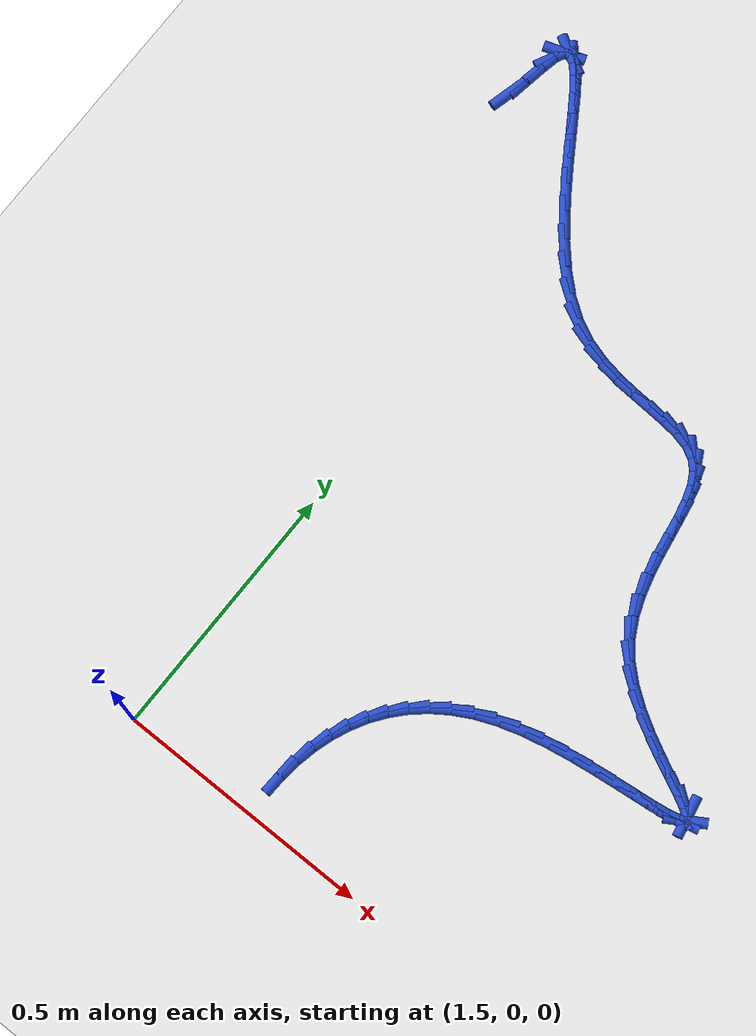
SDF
<sdf version="1.6">
 <world name="default">
  <model name="ground_plane">
   <static>1</static>
   <link name="link">
    <collision name="collision">
     <geometry><plane><normal>0 0 1</normal><size>100 100</size></plane></geometry>
     <surface><friction><ode><mu>100</mu><mu2>50</mu2></ode></friction></surface>
    </collision>
    <visual name="visual">
     <cast_shadows>0</cast_shadows>
     <geometry><plane><normal>0 0 1</normal><size>100 100</size></plane></geometry>
     <material>
      <script><uri>file://media/materials/scripts/gazebo.material</uri><name>Gazebo/WhiteGlow</name></script>
     </material>
    </visual>
   </link>
  </model>
  <model name="line">
   <link name="link_72">
    <pose>1.3014098006461987 1.3032329288068003 0.01 0 1.57 1.3195860041165246</pose>
    <collision name="collision">
     <geometry><cylinder><radius>0.01</radius><length>0.08</length></cylinder></geometry>
    </collision>
    <visual name="visual">
     <material>
      <script><name>Gazebo/Blue</name><uri>file://media/materials/scripts/gazebo.material</uri></script>
     </material>
     <geometry><cylinder><radius>0.01</radius><length>0.08</length></cylinder></geometry>
    </visual>
   </link>
   <link name="link_73">
    <pose>1.3109897678020552 1.3405625827405399 0.01 0 1.57 1.4042285050539571</pose>
    <collision name="collision">
     <geometry><cylinder><radius>0.01</radius><length>0.08</length></cylinder></geometry>
    </collision>
    <visual name="visual">
     <material>
      <script><name>Gazebo/Blue</name><uri>file://media/materials/scripts/gazebo.material</uri></script>
     </material>
     <geometry><cylinder><radius>0.01</radius><length>0.08</length></cylinder></geometry>
    </visual>
   </link>
   <link name="link_74">
    <pose>1.3172772787663003 1.3779602889651004 0.01 0 1.57 1.3706171806686047</pose>
    <collision name="collision">
     <geometry><cylinder><radius>0.01</radius><length>0.08</length></cylinder></geometry>
    </collision>
    <visual name="visual">
     <material>
      <script><name>Gazebo/Blue</name><uri>file://media/materials/scripts/gazebo.material</uri></script>
     </material>
     <geometry><cylinder><radius>0.01</radius><length>0.08</length></cylinder></geometry>
    </visual>
   </link>
   <link name="link_75">
    <pose>1.3233823610823776 1.4080499199768746 0.01 0 1.57 1.1054465272666518</pose>
    <collision name="collision">
     <geometry><cylinder><radius>0.01</radius><length>0.08</length></cylinder></geometry>
    </collision>
    <visual name="visual">
     <material>
      <script><name>Gazebo/Blue</name><uri>file://media/materials/scripts/gazebo.material</uri></script>
     </material>
     <geometry><cylinder><radius>0.01</radius><length>0.08</length></cylinder></geometry>
    </visual>
   </link>
   <link name="link_76">
    <pose>1.331876730161807 1.424966608178737 0.01 0 1.57 0.33051205854369414</pose>
    <collision name="collision">
     <geometry><cylinder><radius>0.01</radius><length>0.08</length></cylinder></geometry>
    </collision>
    <visual name="visual">
     <material>
      <script><name>Gazebo/Blue</name><uri>file://media/materials/scripts/gazebo.material</uri></script>
     </material>
     <geometry><cylinder><radius>0.01</radius><length>0.08</length></cylinder></geometry>
    </visual>
   </link>
   <link name="link_77">
    <pose>1.3431935146351943 1.4288493641454747 0.01 0 1.57 -0.4917693095500789</pose>
    <collision name="collision">
     <geometry><cylinder><radius>0.01</radius><length>0.08</length></cylinder></geometry>
    </collision>
    <visual name="visual">
     <material>
      <script><name>Gazebo/Blue</name><uri>file://media/materials/scripts/gazebo.material</uri></script>
     </material>
     <geometry><cylinder><radius>0.01</radius><length>0.08</length></cylinder></geometry>
    </visual>
   </link>
   <link name="link_78">
    <pose>1.3572348369504987 1.4213279476034106 0.01 0 1.57 -0.8038818135464397</pose>
    <collision name="collision">
     <geometry><cylinder><radius>0.01</radius><length>0.08</length></cylinder></geometry>
    </collision>
    <visual name="visual">
     <material>
      <script><name>Gazebo/Blue</name><uri>file://media/materials/scripts/gazebo.material</uri></script>
     </material>
     <geometry><cylinder><radius>0.01</radius><length>0.08</length></cylinder></geometry>
    </visual>
   </link>
   <link name="link_79">
    <pose>1.37390281955568 1.4040321182788673 0.01 0 1.57 -0.9243733077283942</pose>
    <collision name="collision">
     <geometry><cylinder><radius>0.01</radius><length>0.08</length></cylinder></geometry>
    </collision>
    <visual name="visual">
     <material>
      <script><name>Gazebo/Blue</name><uri>file://media/materials/scripts/gazebo.material</uri></script>
     </material>
     <geometry><cylinder><radius>0.01</radius><length>0.08</length></cylinder></geometry>
    </visual>
   </link>
   <link name="link_80">
    <pose>1.393099584898697 1.3785916358981682 0.01 0 1.57 -0.9758052666844227</pose>
    <collision name="collision">
     <geometry><cylinder><radius>0.01</radius><length>0.08</length></cylinder></geometry>
    </collision>
    <visual name="visual">
     <material>
      <script><name>Gazebo/Blue</name><uri>file://media/materials/scripts/gazebo.material</uri></script>
     </material>
     <geometry><cylinder><radius>0.01</radius><length>0.08</length></cylinder></geometry>
    </visual>
   </link>
   <link name="link_81">
    <pose>1.4147272554275112 1.3466362601876354 0.01 0 1.57 -0.9941470030234926</pose>
    <collision name="collision">
     <geometry><cylinder><radius>0.01</radius><length>0.08</length></cylinder></geometry>
    </collision>
    <visual name="visual">
     <material>
      <script><name>Gazebo/Blue</name><uri>file://media/materials/scripts/gazebo.material</uri></script>
     </material>
     <geometry><cylinder><radius>0.01</radius><length>0.08</length></cylinder></geometry>
    </visual>
   </link>
   <link name="link_82">
    <pose>1.4386879535900812 1.3097957508735925 0.01 0 1.57 -0.9920836327617922</pose>
    <collision name="collision">
     <geometry><cylinder><radius>0.01</radius><length>0.08</length></cylinder></geometry>
    </collision>
    <visual name="visual">
     <material>
      <script><name>Gazebo/Blue</name><uri>file://media/materials/scripts/gazebo.material</uri></script>
     </material>
     <geometry><cylinder><radius>0.01</radius><length>0.08</length></cylinder></geometry>
    </visual>
   </link>
   <link name="link_83">
    <pose>1.464883801834367 1.2696998676823619 0.01 0 1.57 -0.9742345011605615</pose>
    <collision name="collision">
     <geometry><cylinder><radius>0.01</radius><length>0.08</length></cylinder></geometry>
    </collision>
    <visual name="visual">
     <material>
      <script><name>Gazebo/Blue</name><uri>file://media/materials/scripts/gazebo.material</uri></script>
     </material>
     <geometry><cylinder><radius>0.01</radius><length>0.08</length></cylinder></geometry>
    </visual>
   </link>
   <link name="link_84">
    <pose>1.4932169226083278 1.2279783703402665 0.01 0 1.57 -0.9414887511175895</pose>
    <collision name="collision">
     <geometry><cylinder><radius>0.01</radius><length>0.08</length></cylinder></geometry>
    </collision>
    <visual name="visual">
     <material>
      <script><name>Gazebo/Blue</name><uri>file://media/materials/scripts/gazebo.material</uri></script>
     </material>
     <geometry><cylinder><radius>0.01</radius><length>0.08</length></cylinder></geometry>
    </visual>
   </link>
   <link name="link_85">
    <pose>1.5235894383599242 1.1862610185736293 0.01 0 1.57 -0.8923050839368349</pose>
    <collision name="collision">
     <geometry><cylinder><radius>0.01</radius><length>0.08</length></cylinder></geometry>
    </collision>
    <visual name="visual">
     <material>
      <script><name>Gazebo/Blue</name><uri>file://media/materials/scripts/gazebo.material</uri></script>
     </material>
     <geometry><cylinder><radius>0.01</radius><length>0.08</length></cylinder></geometry>
    </visual>
   </link>
   <link name="link_86">
    <pose>1.555903471537115 1.1461775721087735 0.01 0 1.57 -0.8228869852898636</pose>
    <collision name="collision">
     <geometry><cylinder><radius>0.01</radius><length>0.08</length></cylinder></geometry>
    </collision>
    <visual name="visual">
     <material>
      <script><name>Gazebo/Blue</name><uri>file://media/materials/scripts/gazebo.material</uri></script>
     </material>
     <geometry><cylinder><radius>0.01</radius><length>0.08</length></cylinder></geometry>
    </visual>
   </link>
   <link name="link_87">
    <pose>1.5900611445878607 1.109357790672022 0.01 0 1.57 -0.7268320022876468</pose>
    <collision name="collision">
     <geometry><cylinder><radius>0.01</radius><length>0.08</length></cylinder></geometry>
    </collision>
    <visual name="visual">
     <material>
      <script><name>Gazebo/Blue</name><uri>file://media/materials/scripts/gazebo.material</uri></script>
     </material>
     <geometry><cylinder><radius>0.01</radius><length>0.08</length></cylinder></geometry>
    </visual>
   </link>
   <link name="link_88">
    <pose>1.6259645799601203 1.0774314339896969 0.01 0 1.57 -0.594774194716281</pose>
    <collision name="collision">
     <geometry><cylinder><radius>0.01</radius><length>0.08</length></cylinder></geometry>
    </collision>
    <visual name="visual">
     <material>
      <script><name>Gazebo/Blue</name><uri>file://media/materials/scripts/gazebo.material</uri></script>
     </material>
     <geometry><cylinder><radius>0.01</radius><length>0.08</length></cylinder></geometry>
    </visual>
   </link>
   <link name="link_89">
    <pose>1.6635158984413165 1.0520282538859784 0.01 0 1.57 -0.429036087998746</pose>
    <collision name="collision">
     <geometry><cylinder><radius>0.01</radius><length>0.08</length></cylinder></geometry>
    </collision>
    <visual name="visual">
     <material>
      <script><name>Gazebo/Blue</name><uri>file://media/materials/scripts/gazebo.material</uri></script>
     </material>
     <geometry><cylinder><radius>0.01</radius><length>0.08</length></cylinder></geometry>
    </visual>
   </link>
   <link name="link_90">
    <pose>1.7024951330658948 1.0341970126362243 0.01 0 1.57 -0.2787146421624556</pose>
    <collision name="collision">
     <geometry><cylinder><radius>0.01</radius><length>0.08</length></cylinder></geometry>
    </collision>
    <visual name="visual">
     <material>
      <script><name>Gazebo/Blue</name><uri>file://media/materials/scripts/gazebo.material</uri></script>
     </material>
     <geometry><cylinder><radius>0.01</radius><length>0.08</length></cylinder></geometry>
    </visual>
   </link>
   <link name="link_91">
    <pose>1.7422284861918915 1.0228267892265235 0.01 0 1.57 -0.1627906314078422</pose>
    <collision name="collision">
     <geometry><cylinder><radius>0.01</radius><length>0.08</length></cylinder></geometry>
    </collision>
    <visual name="visual">
     <material>
      <script><name>Gazebo/Blue</name><uri>file://media/materials/scripts/gazebo.material</uri></script>
     </material>
     <geometry><cylinder><radius>0.01</radius><length>0.08</length></cylinder></geometry>
    </visual>
   </link>
   <link name="link_92">
    <pose>1.7819367305749387 1.0163049456759408 0.01 0 1.57 -0.084267107856878</pose>
    <collision name="collision">
     <geometry><cylinder><radius>0.01</radius><length>0.08</length></cylinder></geometry>
    </collision>
    <visual name="visual">
     <material>
      <script><name>Gazebo/Blue</name><uri>file://media/materials/scripts/gazebo.material</uri></script>
     </material>
     <geometry><cylinder><radius>0.01</radius><length>0.08</length></cylinder></geometry>
    </visual>
   </link>
   <link name="link_93">
    <pose>1.820840638970668 1.0130188440035428 0.01 0 1.57 -0.04453062783376061</pose>
    <collision name="collision">
     <geometry><cylinder><radius>0.01</radius><length>0.08</length></cylinder></geometry>
    </collision>
    <visual name="visual">
     <material>
      <script><name>Gazebo/Blue</name><uri>file://media/materials/scripts/gazebo.material</uri></script>
     </material>
     <geometry><cylinder><radius>0.01</radius><length>0.08</length></cylinder></geometry>
    </visual>
   </link>
   <link name="link_94">
    <pose>1.8581609841347102 1.0113558462283943 0.01 0 1.57 -0.047237358422324925</pose>
    <collision name="collision">
     <geometry><cylinder><radius>0.01</radius><length>0.08</length></cylinder></geometry>
    </collision>
    <visual name="visual">
     <material>
      <script><name>Gazebo/Blue</name><uri>file://media/materials/scripts/gazebo.material</uri></script>
     </material>
     <geometry><cylinder><radius>0.01</radius><length>0.08</length></cylinder></geometry>
    </visual>
   </link>
   <link name="link_95">
    <pose>1.8931185388226965 1.0097033143695608 0.01 0 1.57 -0.10194456436838788</pose>
    <collision name="collision">
     <geometry><cylinder><radius>0.01</radius><length>0.08</length></cylinder></geometry>
    </collision>
    <visual name="visual">
     <material>
      <script><name>Gazebo/Blue</name><uri>file://media/materials/scripts/gazebo.material</uri></script>
     </material>
     <geometry><cylinder><radius>0.01</radius><length>0.08</length></cylinder></geometry>
    </visual>
   </link>
   <link name="link_96">
    <pose>1.924934075790258 1.0064486104461077 0.01 0 1.57 -0.2279003339068853</pose>
    <collision name="collision">
     <geometry><cylinder><radius>0.01</radius><length>0.08</length></cylinder></geometry>
    </collision>
    <visual name="visual">
     <material>
      <script><name>Gazebo/Blue</name><uri>file://media/materials/scripts/gazebo.material</uri></script>
     </material>
     <geometry><cylinder><radius>0.01</radius><length>0.08</length></cylinder></geometry>
    </visual>
   </link>
   <link name="link_97">
    <pose>1.9528283677930265 0.9999790964771005 0.01 0 1.57 -0.45324840087504636</pose>
    <collision name="collision">
     <geometry><cylinder><radius>0.01</radius><length>0.08</length></cylinder></geometry>
    </collision>
    <visual name="visual">
     <material>
      <script><name>Gazebo/Blue</name><uri>file://media/materials/scripts/gazebo.material</uri></script>
     </material>
     <geometry><cylinder><radius>0.01</radius><length>0.08</length></cylinder></geometry>
    </visual>
   </link>
   <link name="link_98">
    <pose>1.9760221875866337 0.9886821344816048 0.01 0 1.57 -0.7754710051669375</pose>
    <collision name="collision">
     <geometry><cylinder><radius>0.01</radius><length>0.08</length></cylinder></geometry>
    </collision>
    <visual name="visual">
     <material>
      <script><name>Gazebo/Blue</name><uri>file://media/materials/scripts/gazebo.material</uri></script>
     </material>
     <geometry><cylinder><radius>0.01</radius><length>0.08</length></cylinder></geometry>
    </visual>
   </link>
   <link name="link_99">
    <pose>1.9938988651847602 0.9711569087248333 0.01 0 1.57 -1.059490042577062</pose>
    <collision name="collision">
     <geometry><cylinder><radius>0.01</radius><length>0.08</length></cylinder></geometry>
    </collision>
    <visual name="visual">
     <material>
      <script><name>Gazebo/Blue</name><uri>file://media/materials/scripts/gazebo.material</uri></script>
     </material>
     <geometry><cylinder><radius>0.01</radius><length>0.08</length></cylinder></geometry>
    </visual>
   </link>
   <link name="link_100">
    <pose>2.0070955957377454 0.9476364679502648 0.01 0 1.57 -1.2418181087611244</pose>
    <collision name="collision">
     <geometry><cylinder><radius>0.01</radius><length>0.08</length></cylinder></geometry>
    </collision>
    <visual name="visual">
     <material>
      <script><name>Gazebo/Blue</name><uri>file://media/materials/scripts/gazebo.material</uri></script>
     </material>
     <geometry><cylinder><radius>0.01</radius><length>0.08</length></cylinder></geometry>
    </visual>
   </link>
   <link name="link_101">
    <pose>2.01683276763087 0.91911379806103 0.01 0 1.57 -1.3441478718558495</pose>
    <collision name="collision">
     <geometry><cylinder><radius>0.01</radius><length>0.08</length></cylinder></geometry>
    </collision>
    <visual name="visual">
     <material>
      <script><name>Gazebo/Blue</name><uri>file://media/materials/scripts/gazebo.material</uri></script>
     </material>
     <geometry><cylinder><radius>0.01</radius><length>0.08</length></cylinder></geometry>
    </visual>
   </link>
   <link name="link_102">
    <pose>2.0243340064611686 0.8865861032490825 0.01 0 1.57 -1.3901821491103359</pose>
    <collision name="collision">
     <geometry><cylinder><radius>0.01</radius><length>0.08</length></cylinder></geometry>
    </collision>
    <visual name="visual">
     <material>
      <script><name>Gazebo/Blue</name><uri>file://media/materials/scripts/gazebo.material</uri></script>
     </material>
     <geometry><cylinder><radius>0.01</radius><length>0.08</length></cylinder></geometry>
    </visual>
   </link>
   <link name="link_103">
    <pose>2.030822937825674 0.8510505877063753 0.01 0 1.57 -1.3942014782196375</pose>
    <collision name="collision">
     <geometry><cylinder><radius>0.01</radius><length>0.08</length></cylinder></geometry>
    </collision>
    <visual name="visual">
     <material>
      <script><name>Gazebo/Blue</name><uri>file://media/materials/scripts/gazebo.material</uri></script>
     </material>
     <geometry><cylinder><radius>0.01</radius><length>0.08</length></cylinder></geometry>
    </visual>
   </link>
   <link name="link_104">
    <pose>2.0375231873214217 0.8135044556248622 0.01 0 1.57 -1.3628681798609181</pose>
    <collision name="collision">
     <geometry><cylinder><radius>0.01</radius><length>0.08</length></cylinder></geometry>
    </collision>
    <visual name="visual">
     <material>
      <script><name>Gazebo/Blue</name><uri>file://media/materials/scripts/gazebo.material</uri></script>
     </material>
     <geometry><cylinder><radius>0.01</radius><length>0.08</length></cylinder></geometry>
    </visual>
   </link>
   <link name="link_105">
    <pose>2.0456583805454454 0.7749449111964974 0.01 0 1.57 -1.2979666749320158</pose>
    <collision name="collision">
     <geometry><cylinder><radius>0.01</radius><length>0.08</length></cylinder></geometry>
    </collision>
    <visual name="visual">
     <material>
      <script><name>Gazebo/Blue</name><uri>file://media/materials/scripts/gazebo.material</uri></script>
     </material>
     <geometry><cylinder><radius>0.01</radius><length>0.08</length></cylinder></geometry>
    </visual>
   </link>
   <link name="link_106">
    <pose>2.056452143094779 0.7363691586132344 0.01 0 1.57 -1.1986170086749084</pose>
    <collision name="collision">
     <geometry><cylinder><radius>0.01</radius><length>0.08</length></cylinder></geometry>
    </collision>
    <visual name="visual">
     <material>
      <script><name>Gazebo/Blue</name><uri>file://media/materials/scripts/gazebo.material</uri></script>
     </material>
     <geometry><cylinder><radius>0.01</radius><length>0.08</length></cylinder></geometry>
    </visual>
   </link>
   <link name="link_107">
    <pose>2.0711281005664564 0.6987744020670266 0.01 0 1.57 -1.0638093465070246</pose>
    <collision name="collision">
     <geometry><cylinder><radius>0.01</radius><length>0.08</length></cylinder></geometry>
    </collision>
    <visual name="visual">
     <material>
      <script><name>Gazebo/Blue</name><uri>file://media/materials/scripts/gazebo.material</uri></script>
     </material>
     <geometry><cylinder><radius>0.01</radius><length>0.08</length></cylinder></geometry>
    </visual>
   </link>
   <link name="link_108">
    <pose>2.0909098785575115 0.663157845749828 0.01 0 1.57 -0.8964215143062476</pose>
    <collision name="collision">
     <geometry><cylinder><radius>0.01</radius><length>0.08</length></cylinder></geometry>
    </collision>
    <visual name="visual">
     <material>
      <script><name>Gazebo/Blue</name><uri>file://media/materials/scripts/gazebo.material</uri></script>
     </material>
     <geometry><cylinder><radius>0.01</radius><length>0.08</length></cylinder></geometry>
    </visual>
   </link>
   <link name="link_109">
    <pose>2.117007047298215 0.6305118890540427 0.01 0 1.57 -0.7313871092628221</pose>
    <collision name="collision">
     <geometry><cylinder><radius>0.01</radius><length>0.08</length></cylinder></geometry>
    </collision>
    <visual name="visual">
     <material>
      <script><name>Gazebo/Blue</name><uri>file://media/materials/scripts/gazebo.material</uri></script>
     </material>
     <geometry><cylinder><radius>0.01</radius><length>0.08</length></cylinder></geometry>
    </visual>
   </link>
   <link name="link_110">
    <pose>2.1494267170686574 0.6014178727975091 0.01 0 1.57 -0.6112872241490892</pose>
    <collision name="collision">
     <geometry><cylinder><radius>0.01</radius><length>0.08</length></cylinder></geometry>
    </collision>
    <visual name="visual">
     <material>
      <script><name>Gazebo/Blue</name><uri>file://media/materials/scripts/gazebo.material</uri></script>
     </material>
     <geometry><cylinder><radius>0.01</radius><length>0.08</length></cylinder></geometry>
    </visual>
   </link>
   <link name="link_111">
    <pose>2.1860697240764684 0.5757371121392155 0.01 0 1.57 -0.5278596065426268</pose>
    <collision name="collision">
     <geometry><cylinder><radius>0.01</radius><length>0.08</length></cylinder></geometry>
    </collision>
    <visual name="visual">
     <material>
      <script><name>Gazebo/Blue</name><uri>file://media/materials/scripts/gazebo.material</uri></script>
     </material>
     <geometry><cylinder><radius>0.01</radius><length>0.08</length></cylinder></geometry>
    </visual>
   </link>
   <link name="link_112">
    <pose>2.224624083075507 0.5532581696417651 0.01 0 1.57 -0.4722427216709994</pose>
    <collision name="collision">
     <geometry><cylinder><radius>0.01</radius><length>0.08</length></cylinder></geometry>
    </collision>
    <visual name="visual">
     <material>
      <script><name>Gazebo/Blue</name><uri>file://media/materials/scripts/gazebo.material</uri></script>
     </material>
     <geometry><cylinder><radius>0.01</radius><length>0.08</length></cylinder></geometry>
    </visual>
   </link>
   <link name="link_113">
    <pose>2.2627778088196333 0.5337696078677623 0.01 0 1.57 -0.4405688445016698</pose>
    <collision name="collision">
     <geometry><cylinder><radius>0.01</radius><length>0.08</length></cylinder></geometry>
    </collision>
    <visual name="visual">
     <material>
      <script><name>Gazebo/Blue</name><uri>file://media/materials/scripts/gazebo.material</uri></script>
     </material>
     <geometry><cylinder><radius>0.01</radius><length>0.08</length></cylinder></geometry>
    </visual>
   </link>
   <link name="link_114">
    <pose>2.2982189160627065 0.5170599893798091 0.01 0 1.57 -0.4352154620678666</pose>
    <collision name="collision">
     <geometry><cylinder><radius>0.01</radius><length>0.08</length></cylinder></geometry>
    </collision>
    <visual name="visual">
     <material>
      <script><name>Gazebo/Blue</name><uri>file://media/materials/scripts/gazebo.material</uri></script>
     </material>
     <geometry><cylinder><radius>0.01</radius><length>0.08</length></cylinder></geometry>
    </visual>
   </link>
   <link name="link_115">
    <pose>2.328635419558586 0.50291787674051 0.01 0 1.57 -0.4721410890539826</pose>
    <collision name="collision">
     <geometry><cylinder><radius>0.01</radius><length>0.08</length></cylinder></geometry>
    </collision>
    <visual name="visual">
     <material>
      <script><name>Gazebo/Blue</name><uri>file://media/materials/scripts/gazebo.material</uri></script>
     </material>
     <geometry><cylinder><radius>0.01</radius><length>0.08</length></cylinder></geometry>
    </visual>
   </link>
   <link name="link_116">
    <pose>2.3517153340611308 0.4911318325124682 0.01 0 1.57 -0.6225921645690136</pose>
    <collision name="collision">
     <geometry><cylinder><radius>0.01</radius><length>0.08</length></cylinder></geometry>
    </collision>
    <visual name="visual">
     <material>
      <script><name>Gazebo/Blue</name><uri>file://media/materials/scripts/gazebo.material</uri></script>
     </material>
     <geometry><cylinder><radius>0.01</radius><length>0.08</length></cylinder></geometry>
    </visual>
   </link>
   <link name="link_117">
    <pose>2.3651466743242007 0.48149041925828723 0.01 0 1.57 -1.3628367425050438</pose>
    <collision name="collision">
     <geometry><cylinder><radius>0.01</radius><length>0.08</length></cylinder></geometry>
    </collision>
    <visual name="visual">
     <material>
      <script><name>Gazebo/Blue</name><uri>file://media/materials/scripts/gazebo.material</uri></script>
     </material>
     <geometry><cylinder><radius>0.01</radius><length>0.08</length></cylinder></geometry>
    </visual>
   </link>
   <link name="link_118">
    <pose>2.3667754546233377 0.47377145659620257 0.01 0 1.57 0.5453846923096642</pose>
    <collision name="collision">
     <geometry><cylinder><radius>0.01</radius><length>0.08</length></cylinder></geometry>
    </collision>
    <visual name="visual">
     <material>
      <script><name>Gazebo/Blue</name><uri>file://media/materials/scripts/gazebo.material</uri></script>
     </material>
     <geometry><cylinder><radius>0.01</radius><length>0.08</length></cylinder></geometry>
    </visual>
   </link>
   <link name="link_119">
    <pose>2.356613566773839 0.4676054984966212 0.01 0 1.57 0.24483642569573316</pose>
    <collision name="collision">
     <geometry><cylinder><radius>0.01</radius><length>0.08</length></cylinder></geometry>
    </collision>
    <visual name="visual">
     <material>
      <script><name>Gazebo/Blue</name><uri>file://media/materials/scripts/gazebo.material</uri></script>
     </material>
     <geometry><cylinder><radius>0.01</radius><length>0.08</length></cylinder></geometry>
    </visual>
   </link>
   <link name="link_120">
    <pose>2.3362442812363513 0.46251625535733654 0.01 0 1.57 0.15386731839109807</pose>
    <collision name="collision">
     <geometry><cylinder><radius>0.01</radius><length>0.08</length></cylinder></geometry>
    </collision>
    <visual name="visual">
     <material>
      <script><name>Gazebo/Blue</name><uri>file://media/materials/scripts/gazebo.material</uri></script>
     </material>
     <geometry><cylinder><radius>0.01</radius><length>0.08</length></cylinder></geometry>
    </visual>
   </link>
   <link name="link_121">
    <pose>2.3072861173905026 0.4580250408779011 0.01 0 1.57 0.12108720070619562</pose>
    <collision name="collision">
     <geometry><cylinder><radius>0.01</radius><length>0.08</length></cylinder></geometry>
    </collision>
    <visual name="visual">
     <material>
      <script><name>Gazebo/Blue</name><uri>file://media/materials/scripts/gazebo.material</uri></script>
     </material>
     <geometry><cylinder><radius>0.01</radius><length>0.08</length></cylinder></geometry>
    </visual>
   </link>
   <link name="link_122">
    <pose>2.2713575946159197 0.4536531687578675 0.01 0 1.57 0.11411386322245809</pose>
    <collision name="collision">
     <geometry><cylinder><radius>0.01</radius><length>0.08</length></cylinder></geometry>
    </collision>
    <visual name="visual">
     <material>
      <script><name>Gazebo/Blue</name><uri>file://media/materials/scripts/gazebo.material</uri></script>
     </material>
     <geometry><cylinder><radius>0.01</radius><length>0.08</length></cylinder></geometry>
    </visual>
   </link>
   <link name="link_123">
    <pose>2.2300772322922287 0.44892195269678836 0.01 0 1.57 0.12309784770566526</pose>
    <collision name="collision">
     <geometry><cylinder><radius>0.01</radius><length>0.08</length></cylinder></geometry>
    </collision>
    <visual name="visual">
     <material>
      <script><name>Gazebo/Blue</name><uri>file://media/materials/scripts/gazebo.material</uri></script>
     </material>
     <geometry><cylinder><radius>0.01</radius><length>0.08</length></cylinder></geometry>
    </visual>
   </link>
   <link name="link_124">
    <pose>2.1850635497990565 0.4433527063942162 0.01 0 1.57 0.14508381141748009</pose>
    <collision name="collision">
     <geometry><cylinder><radius>0.01</radius><length>0.08</length></cylinder></geometry>
    </collision>
    <visual name="visual">
     <material>
      <script><name>Gazebo/Blue</name><uri>file://media/materials/scripts/gazebo.material</uri></script>
     </material>
     <geometry><cylinder><radius>0.01</radius><length>0.08</length></cylinder></geometry>
    </visual>
   </link>
   <link name="link_125">
    <pose>2.1379350665160306 0.4364667435497038 0.01 0 1.57 0.18030707926848685</pose>
    <collision name="collision">
     <geometry><cylinder><radius>0.01</radius><length>0.08</length></cylinder></geometry>
    </collision>
    <visual name="visual">
     <material>
      <script><name>Gazebo/Blue</name><uri>file://media/materials/scripts/gazebo.material</uri></script>
     </material>
     <geometry><cylinder><radius>0.01</radius><length>0.08</length></cylinder></geometry>
    </visual>
   </link>
   <link name="link_126">
    <pose>2.090310301822776 0.42778537786280346 0.01 0 1.57 0.2313694723557131</pose>
    <collision name="collision">
     <geometry><cylinder><radius>0.01</radius><length>0.08</length></cylinder></geometry>
    </collision>
    <visual name="visual">
     <material>
      <script><name>Gazebo/Blue</name><uri>file://media/materials/scripts/gazebo.material</uri></script>
     </material>
     <geometry><cylinder><radius>0.01</radius><length>0.08</length></cylinder></geometry>
    </visual>
   </link>
   <link name="link_127">
    <pose>2.0438077750989225 0.4168299230330683 0.01 0 1.57 0.30354916392918596</pose>
    <collision name="collision">
     <geometry><cylinder><radius>0.01</radius><length>0.08</length></cylinder></geometry>
    </collision>
    <visual name="visual">
     <material>
      <script><name>Gazebo/Blue</name><uri>file://media/materials/scripts/gazebo.material</uri></script>
     </material>
     <geometry><cylinder><radius>0.01</radius><length>0.08</length></cylinder></geometry>
    </visual>
   </link>
   <link name="link_128">
    <pose>2.0000449150725483 0.4031221121599572 0.01 0 1.57 0.39837778965146736</pose>
    <collision name="collision">
     <geometry><cylinder><radius>0.01</radius><length>0.08</length></cylinder></geometry>
    </collision>
    <visual name="visual">
     <material>
      <script><name>Gazebo/Blue</name><uri>file://media/materials/scripts/gazebo.material</uri></script>
     </material>
     <geometry><cylinder><radius>0.01</radius><length>0.08</length></cylinder></geometry>
    </visual>
   </link>
   <link name="link_129">
    <pose>1.9602005692988518 0.3863523306531532 0.01 0 1.57 0.50273860339846</pose>
    <collision name="collision">
     <geometry><cylinder><radius>0.01</radius><length>0.08</length></cylinder></geometry>
    </collision>
    <visual name="visual">
     <material>
      <script><name>Gazebo/Blue</name><uri>file://media/materials/scripts/gazebo.material</uri></script>
     </material>
     <geometry><cylinder><radius>0.01</radius><length>0.08</length></cylinder></geometry>
    </visual>
   </link>
   <link name="link_130">
    <pose>1.9243456501187455 0.36663701010266064 0.01 0 1.57 0.612851577323235</pose>
    <collision name="collision">
     <geometry><cylinder><radius>0.01</radius><length>0.08</length></cylinder></geometry>
    </collision>
    <visual name="visual">
     <material>
      <script><name>Gazebo/Blue</name><uri>file://media/materials/scripts/gazebo.material</uri></script>
     </material>
     <geometry><cylinder><radius>0.01</radius><length>0.08</length></cylinder></geometry>
    </visual>
   </link>
   <link name="link_131">
    <pose>1.8923788065379599 0.34415882436158507 0.01 0 1.57 0.7268282999756607</pose>
    <collision name="collision">
     <geometry><cylinder><radius>0.01</radius><length>0.08</length></cylinder></geometry>
    </collision>
    <visual name="visual">
     <material>
      <script><name>Gazebo/Blue</name><uri>file://media/materials/scripts/gazebo.material</uri></script>
     </material>
     <geometry><cylinder><radius>0.01</radius><length>0.08</length></cylinder></geometry>
    </visual>
   </link>
   <link name="link_132">
    <pose>1.8641986875622238 0.31910044728303166 0.01 0 1.57 0.8423358372168903</pose>
    <collision name="collision">
     <geometry><cylinder><radius>0.01</radius><length>0.08</length></cylinder></geometry>
    </collision>
    <visual name="visual">
     <material>
      <script><name>Gazebo/Blue</name><uri>file://media/materials/scripts/gazebo.material</uri></script>
     </material>
     <geometry><cylinder><radius>0.01</radius><length>0.08</length></cylinder></geometry>
    </visual>
   </link>
   <link name="link_133">
    <pose>1.8397039421972685 0.2916445527201059 0.01 0 1.57 0.9568834716299983</pose>
    <collision name="collision">
     <geometry><cylinder><radius>0.01</radius><length>0.08</length></cylinder></geometry>
    </collision>
    <visual name="visual">
     <material>
      <script><name>Gazebo/Blue</name><uri>file://media/materials/scripts/gazebo.material</uri></script>
     </material>
     <geometry><cylinder><radius>0.01</radius><length>0.08</length></cylinder></geometry>
    </visual>
   </link>
   <link name="link_134">
    <pose>1.8187932194488243 0.2619738145259136 0.01 0 1.57 1.0681601539625079</pose>
    <collision name="collision">
     <geometry><cylinder><radius>0.01</radius><length>0.08</length></cylinder></geometry>
    </collision>
    <visual name="visual">
     <material>
      <script><name>Gazebo/Blue</name><uri>file://media/materials/scripts/gazebo.material</uri></script>
     </material>
     <geometry><cylinder><radius>0.01</radius><length>0.08</length></cylinder></geometry>
    </visual>
   </link>
   <link name="link_135">
    <pose>1.8013651683226213 0.23027090655355936 0.01 0 1.57 1.1743160358597533</pose>
    <collision name="collision">
     <geometry><cylinder><radius>0.01</radius><length>0.08</length></cylinder></geometry>
    </collision>
    <visual name="visual">
     <material>
      <script><name>Gazebo/Blue</name><uri>file://media/materials/scripts/gazebo.material</uri></script>
     </material>
     <geometry><cylinder><radius>0.01</radius><length>0.08</length></cylinder></geometry>
    </visual>
   </link>
   <link name="link_136">
    <pose>1.7873184378243894 0.19671850265614851 0.01 0 1.57 1.274112090407908</pose>
    <collision name="collision">
     <geometry><cylinder><radius>0.01</radius><length>0.08</length></cylinder></geometry>
    </collision>
    <visual name="visual">
     <material>
      <script><name>Gazebo/Blue</name><uri>file://media/materials/scripts/gazebo.material</uri></script>
     </material>
     <geometry><cylinder><radius>0.01</radius><length>0.08</length></cylinder></geometry>
    </visual>
   </link>
   <link name="link_137">
    <pose>1.7765516769598593 0.16149927668678785 0.01 0 1.57 1.3669262133627693</pose>
    <collision name="collision">
     <geometry><cylinder><radius>0.01</radius><length>0.08</length></cylinder></geometry>
    </collision>
    <visual name="visual">
     <material>
      <script><name>Gazebo/Blue</name><uri>file://media/materials/scripts/gazebo.material</uri></script>
     </material>
     <geometry><cylinder><radius>0.01</radius><length>0.08</length></cylinder></geometry>
    </visual>
   </link>
   <link name="link_138">
    <pose>1.7689635347347608 0.1247959024985808 0.01 0 1.57 1.452656951470111</pose>
    <collision name="collision">
     <geometry><cylinder><radius>0.01</radius><length>0.08</length></cylinder></geometry>
    </collision>
    <visual name="visual">
     <material>
      <script><name>Gazebo/Blue</name><uri>file://media/materials/scripts/gazebo.material</uri></script>
     </material>
     <geometry><cylinder><radius>0.01</radius><length>0.08</length></cylinder></geometry>
    </visual>
   </link>
   <link name="link_139">
    <pose>1.764452660154825 0.08679105394463488 0.01 0 1.57 1.5315829322964019</pose>
    <collision name="collision">
     <geometry><cylinder><radius>0.01</radius><length>0.08</length></cylinder></geometry>
    </collision>
    <visual name="visual">
     <material>
      <script><name>Gazebo/Blue</name><uri>file://media/materials/scripts/gazebo.material</uri></script>
     </material>
     <geometry><cylinder><radius>0.01</radius><length>0.08</length></cylinder></geometry>
    </visual>
   </link>
  </model>
 </world>
</sdf>
